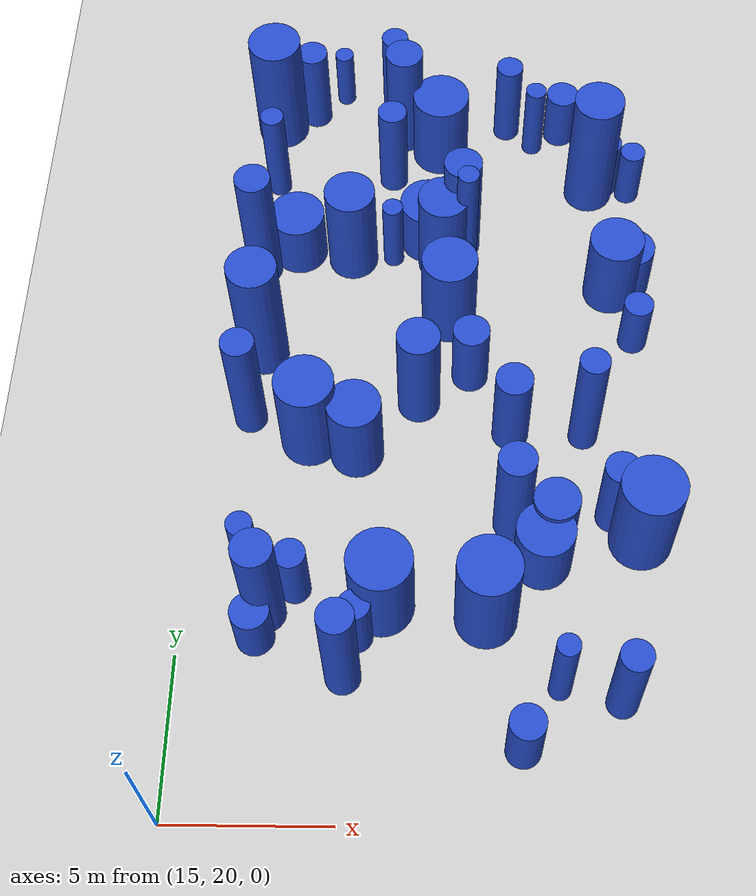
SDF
<sdf version="1.6">
 <world name="default">
  <model name="ground_plane">
   <static>1</static>
   <link name="link">
    <collision name="collision">
     <geometry><plane><normal>0 0 1</normal><size>100 100</size></plane></geometry>
     <surface><friction><ode><mu>100</mu><mu2>50</mu2></ode></friction></surface>
    </collision>
    <visual name="visual">
     <cast_shadows>0</cast_shadows>
     <geometry><plane><normal>0 0 1</normal><size>100 100</size></plane></geometry>
     <material>
      <script><uri>file://media/materials/scripts/gazebo.material</uri><name>Gazebo/Grey</name></script>
     </material>
    </visual>
   </link>
  </model>
  <model name="6">
   <static>0</static>
   <link name="link">
    <inertial>
     <mass>2</mass>
     <inertia><ixx>1.37461</ixx><ixy>0</ixy><ixz>0</ixz><iyy>1.37461</iyy><iyz>0</iyz><izz>0.826308</izz></inertia>
    </inertial>
    <collision name="collision">
     <geometry><cylinder><length>2.40182</length><radius>0.909015</radius></cylinder></geometry>
     <surface><contact><collide_without_contact>1</collide_without_contact></contact></surface>
    </collision>
    <visual name="visual">
     <geometry><cylinder><length>2.40182</length><radius>0.909015</radius></cylinder></geometry>
     <material>
      <script><uri>file://media/materials/scripts/gazebo.material</uri><name>Gazebo/Blue</name></script>
     </material>
    </visual>
    <gravity>0</gravity>
   </link>
   <pose>25.9791 28.1484 1.20091 0 -0 0</pose>
  </model>
  <model name="13">
   <static>0</static>
   <link name="link">
    <inertial>
     <mass>2</mass>
     <inertia><ixx>1.9703</ixx><ixy>0</ixy><ixz>0</ixz><iyy>1.9703</iyy><iyz>0</iyz><izz>0.2914</izz></inertia>
    </inertial>
    <collision name="collision">
     <geometry><cylinder><length>3.30871</length><radius>0.539815</radius></cylinder></geometry>
     <surface><contact><collide_without_contact>1</collide_without_contact></contact></surface>
    </collision>
    <visual name="visual">
     <geometry><cylinder><length>3.30871</length><radius>0.539815</radius></cylinder></geometry>
     <material>
      <script><uri>file://media/materials/scripts/gazebo.material</uri><name>Gazebo/Blue</name></script>
     </material>
    </visual>
    <gravity>0</gravity>
   </link>
   <pose>28.2282 29.745 1.65436 0 -0 0</pose>
  </model>
  <model name="16">
   <static>0</static>
   <link name="link">
    <inertial>
     <mass>2</mass>
     <inertia>
      <ixx>0.892268</ixx>
      <ixy>0</ixy>
      <ixz>0</ixz>
      <iyy>0.892268</iyy>
      <iyz>0</iyz>
      <izz>0.347311</izz>
     </inertia>
    </inertial>
    <collision name="collision">
     <geometry><cylinder><length>2.07646</length><radius>0.589331</radius></cylinder></geometry>
     <surface><contact><collide_without_contact>1</collide_without_contact></contact></surface>
    </collision>
    <visual name="visual">
     <geometry><cylinder><length>2.07646</length><radius>0.589331</radius></cylinder></geometry>
     <material>
      <script><uri>file://media/materials/scripts/gazebo.material</uri><name>Gazebo/Blue</name></script>
     </material>
    </visual>
    <gravity>0</gravity>
   </link>
   <pose>17.3559 25.5947 1.03823 0 -0 0</pose>
  </model>
  <model name="23">
   <static>0</static>
   <link name="link">
    <inertial>
     <mass>2</mass>
     <inertia><ixx>2.13264</ixx><ixy>0</ixy><ixz>0</ixz><iyy>2.13264</iyy><iyz>0</iyz><izz>0.34742</izz></inertia>
    </inertial>
    <collision name="collision">
     <geometry><cylinder><length>3.42835</length><radius>0.589423</radius></cylinder></geometry>
     <surface><contact><collide_without_contact>1</collide_without_contact></contact></surface>
    </collision>
    <visual name="visual">
     <geometry><cylinder><length>3.42835</length><radius>0.589423</radius></cylinder></geometry>
     <material>
      <script><uri>file://media/materials/scripts/gazebo.material</uri><name>Gazebo/Blue</name></script>
     </material>
    </visual>
    <gravity>0</gravity>
   </link>
   <pose>25.0737 32.6969 1.71417 0 -0 0</pose>
  </model>
  <model name="26">
   <static>0</static>
   <link name="link">
    <inertial>
     <mass>2</mass>
     <inertia><ixx>2.66427</ixx><ixy>0</ixy><ixz>0</ixz><iyy>2.66427</iyy><iyz>0</iyz><izz>0.704227</izz></inertia>
    </inertial>
    <collision name="collision">
     <geometry><cylinder><length>3.72464</length><radius>0.839182</radius></cylinder></geometry>
     <surface><contact><collide_without_contact>1</collide_without_contact></contact></surface>
    </collision>
    <visual name="visual">
     <geometry><cylinder><length>3.72464</length><radius>0.839182</radius></cylinder></geometry>
     <material>
      <script><uri>file://media/materials/scripts/gazebo.material</uri><name>Gazebo/Blue</name></script>
     </material>
    </visual>
    <gravity>0</gravity>
   </link>
   <pose>19.7542 39.6332 1.86232 0 -0 0</pose>
  </model>
  <model name="29">
   <static>0</static>
   <link name="link">
    <inertial>
     <mass>2</mass>
     <inertia>
      <ixx>0.975002</ixx>
      <ixy>0</ixy>
      <ixz>0</ixz>
      <iyy>0.975002</iyy>
      <iyz>0</iyz>
      <izz>0.174571</izz>
     </inertia>
    </inertial>
    <collision name="collision">
     <geometry><cylinder><length>2.30788</length><radius>0.417817</radius></cylinder></geometry>
     <surface><contact><collide_without_contact>1</collide_without_contact></contact></surface>
    </collision>
    <visual name="visual">
     <geometry><cylinder><length>2.30788</length><radius>0.417817</radius></cylinder></geometry>
     <material>
      <script><uri>file://media/materials/scripts/gazebo.material</uri><name>Gazebo/Blue</name></script>
     </material>
    </visual>
    <gravity>0</gravity>
   </link>
   <pose>29.3907 42.6499 1.15394 0 -0 0</pose>
  </model>
  <model name="31">
   <static>0</static>
   <link name="link">
    <inertial>
     <mass>2</mass>
     <inertia><ixx>2.57392</ixx><ixy>0</ixy><ixz>0</ixz><iyy>2.57392</iyy><iyz>0</iyz><izz>0.71737</izz></inertia>
    </inertial>
    <collision name="collision">
     <geometry><cylinder><length>3.64574</length><radius>0.846977</radius></cylinder></geometry>
     <surface><contact><collide_without_contact>1</collide_without_contact></contact></surface>
    </collision>
    <visual name="visual">
     <geometry><cylinder><length>3.64574</length><radius>0.846977</radius></cylinder></geometry>
     <material>
      <script><uri>file://media/materials/scripts/gazebo.material</uri><name>Gazebo/Blue</name></script>
     </material>
    </visual>
    <gravity>0</gravity>
   </link>
   <pose>22.8649 39.5204 1.82287 0 -0 0</pose>
  </model>
  <model name="37">
   <static>0</static>
   <link name="link">
    <inertial>
     <mass>2</mass>
     <inertia><ixx>3.04398</ixx><ixy>0</ixy><ixz>0</ixz><iyy>3.04398</iyy><iyz>0</iyz><izz>0.92073</izz></inertia>
    </inertial>
    <collision name="collision">
     <geometry><cylinder><length>3.93722</length><radius>0.959547</radius></cylinder></geometry>
     <surface><contact><collide_without_contact>1</collide_without_contact></contact></surface>
    </collision>
    <visual name="visual">
     <geometry><cylinder><length>3.93722</length><radius>0.959547</radius></cylinder></geometry>
     <material>
      <script><uri>file://media/materials/scripts/gazebo.material</uri><name>Gazebo/Blue</name></script>
     </material>
    </visual>
    <gravity>0</gravity>
   </link>
   <pose>24.2494 26.2747 1.96861 0 -0 0</pose>
  </model>
  <model name="38">
   <static>0</static>
   <link name="link">
    <inertial>
     <mass>2</mass>
     <inertia><ixx>1.02896</ixx><ixy>0</ixy><ixz>0</ixz><iyy>1.02896</iyy><iyz>0</iyz><izz>0.550959</izz></inertia>
    </inertial>
    <collision name="collision">
     <geometry><cylinder><length>2.12623</length><radius>0.742266</radius></cylinder></geometry>
     <surface><contact><collide_without_contact>1</collide_without_contact></contact></surface>
    </collision>
    <visual name="visual">
     <geometry><cylinder><length>2.12623</length><radius>0.742266</radius></cylinder></geometry>
     <material>
      <script><uri>file://media/materials/scripts/gazebo.material</uri><name>Gazebo/Blue</name></script>
     </material>
    </visual>
    <gravity>0</gravity>
   </link>
   <pose>29.1701 38.6962 1.06311 0 -0 0</pose>
  </model>
  <model name="41">
   <static>0</static>
   <link name="link">
    <inertial>
     <mass>2</mass>
     <inertia><ixx>2.43129</ixx><ixy>0</ixy><ixz>0</ixz><iyy>2.43129</iyy><iyz>0</iyz><izz>0.15694</izz></inertia>
    </inertial>
    <collision name="collision">
     <geometry><cylinder><length>3.75725</length><radius>0.396156</radius></cylinder></geometry>
     <surface><contact><collide_without_contact>1</collide_without_contact></contact></surface>
    </collision>
    <visual name="visual">
     <geometry><cylinder><length>3.75725</length><radius>0.396156</radius></cylinder></geometry>
     <material>
      <script><uri>file://media/materials/scripts/gazebo.material</uri><name>Gazebo/Blue</name></script>
     </material>
    </visual>
    <gravity>0</gravity>
   </link>
   <pose>16.9986 42.8262 1.87863 0 -0 0</pose>
  </model>
  <model name="46">
   <static>0</static>
   <link name="link">
    <inertial>
     <mass>2</mass>
     <inertia><ixx>3.66514</ixx><ixy>0</ixy><ixz>0</ixz><iyy>3.66514</iyy><iyz>0</iyz><izz>0.277177</izz></inertia>
    </inertial>
    <collision name="collision">
     <geometry><cylinder><length>4.59992</length><radius>0.526476</radius></cylinder></geometry>
     <surface><contact><collide_without_contact>1</collide_without_contact></contact></surface>
    </collision>
    <visual name="visual">
     <geometry><cylinder><length>4.59992</length><radius>0.526476</radius></cylinder></geometry>
     <material>
      <script><uri>file://media/materials/scripts/gazebo.material</uri><name>Gazebo/Blue</name></script>
     </material>
    </visual>
    <gravity>0</gravity>
   </link>
   <pose>16.6724 33.1642 2.29996 0 -0 0</pose>
  </model>
  <model name="61">
   <static>0</static>
   <link name="link">
    <inertial>
     <mass>2</mass>
     <inertia><ixx>1.98038</ixx><ixy>0</ixy><ixz>0</ixz><iyy>1.98038</iyy><iyz>0</iyz><izz>0.205126</izz></inertia>
    </inertial>
    <collision name="collision">
     <geometry><cylinder><length>3.35662</length><radius>0.452909</radius></cylinder></geometry>
     <surface><contact><collide_without_contact>1</collide_without_contact></contact></surface>
    </collision>
    <visual name="visual">
     <geometry><cylinder><length>3.35662</length><radius>0.452909</radius></cylinder></geometry>
     <material>
      <script><uri>file://media/materials/scripts/gazebo.material</uri><name>Gazebo/Blue</name></script>
     </material>
    </visual>
    <gravity>0</gravity>
   </link>
   <pose>25.1371 45.5648 1.67831 0 -0 0</pose>
  </model>
  <model name="62">
   <static>0</static>
   <link name="link">
    <inertial>
     <mass>2</mass>
     <inertia><ixx>2.47347</ixx><ixy>0</ixy><ixz>0</ixz><iyy>2.47347</iyy><iyz>0</iyz><izz>0.98743</izz></inertia>
    </inertial>
    <collision name="collision">
     <geometry><cylinder><length>3.44652</length><radius>0.993695</radius></cylinder></geometry>
     <surface><contact><collide_without_contact>1</collide_without_contact></contact></surface>
    </collision>
    <visual name="visual">
     <geometry><cylinder><length>3.44652</length><radius>0.993695</radius></cylinder></geometry>
     <material>
      <script><uri>file://media/materials/scripts/gazebo.material</uri><name>Gazebo/Blue</name></script>
     </material>
    </visual>
    <gravity>0</gravity>
   </link>
   <pose>21.1142 26.6464 1.72326 0 -0 0</pose>
  </model>
  <model name="69">
   <static>0</static>
   <link name="link">
    <inertial>
     <mass>2</mass>
     <inertia><ixx>3.87499</ixx><ixy>0</ixy><ixz>0</ixz><iyy>3.87499</iyy><iyz>0</iyz><izz>0.295667</izz></inertia>
    </inertial>
    <collision name="collision">
     <geometry><cylinder><length>4.72895</length><radius>0.543753</radius></cylinder></geometry>
     <surface><contact><collide_without_contact>1</collide_without_contact></contact></surface>
    </collision>
    <visual name="visual">
     <geometry><cylinder><length>4.72895</length><radius>0.543753</radius></cylinder></geometry>
     <material>
      <script><uri>file://media/materials/scripts/gazebo.material</uri><name>Gazebo/Blue</name></script>
     </material>
    </visual>
    <gravity>0</gravity>
   </link>
   <pose>20.0239 24.3758 2.36447 0 -0 0</pose>
  </model>
  <model name="71">
   <static>0</static>
   <link name="link">
    <inertial>
     <mass>2</mass>
     <inertia><ixx>3.59264</ixx><ixy>0</ixy><ixz>0</ixz><iyy>3.59264</iyy><iyz>0</iyz><izz>0.399079</izz></inertia>
    </inertial>
    <collision name="collision">
     <geometry><cylinder><length>4.51205</length><radius>0.631727</radius></cylinder></geometry>
     <surface><contact><collide_without_contact>1</collide_without_contact></contact></surface>
    </collision>
    <visual name="visual">
     <geometry><cylinder><length>4.51205</length><radius>0.631727</radius></cylinder></geometry>
     <material>
      <script><uri>file://media/materials/scripts/gazebo.material</uri><name>Gazebo/Blue</name></script>
     </material>
    </visual>
    <gravity>0</gravity>
   </link>
   <pose>23.478 40.2505 2.25603 0 -0 0</pose>
  </model>
  <model name="84">
   <static>0</static>
   <link name="link">
    <inertial>
     <mass>2</mass>
     <inertia><ixx>2.71071</ixx><ixy>0</ixy><ixz>0</ixz><iyy>2.71071</iyy><iyz>0</iyz><izz>0.884749</izz></inertia>
    </inertial>
    <collision name="collision">
     <geometry><cylinder><length>3.68917</length><radius>0.940611</radius></cylinder></geometry>
     <surface><contact><collide_without_contact>1</collide_without_contact></contact></surface>
    </collision>
    <visual name="visual">
     <geometry><cylinder><length>3.68917</length><radius>0.940611</radius></cylinder></geometry>
     <material>
      <script><uri>file://media/materials/scripts/gazebo.material</uri><name>Gazebo/Blue</name></script>
     </material>
    </visual>
    <gravity>0</gravity>
   </link>
   <pose>18.6467 32.3799 1.84459 0 -0 0</pose>
  </model>
  <model name="89">
   <static>0</static>
   <link name="link">
    <inertial>
     <mass>2</mass>
     <inertia><ixx>4.46549</ixx><ixy>0</ixy><ixz>0</ixz><iyy>4.46549</iyy><iyz>0</iyz><izz>0.649868</izz></inertia>
    </inertial>
    <collision name="collision">
     <geometry><cylinder><length>4.98431</length><radius>0.806144</radius></cylinder></geometry>
     <surface><contact><collide_without_contact>1</collide_without_contact></contact></surface>
    </collision>
    <visual name="visual">
     <geometry><cylinder><length>4.98431</length><radius>0.806144</radius></cylinder></geometry>
     <material>
      <script><uri>file://media/materials/scripts/gazebo.material</uri><name>Gazebo/Blue</name></script>
     </material>
    </visual>
    <gravity>0</gravity>
   </link>
   <pose>16.9416 35.66 2.49215 0 -0 0</pose>
  </model>
  <model name="90">
   <static>0</static>
   <link name="link">
    <inertial>
     <mass>2</mass>
     <inertia><ixx>1.25348</ixx><ixy>0</ixy><ixz>0</ixz><iyy>1.25348</iyy><iyz>0</iyz><izz>0.890795</izz></inertia>
    </inertial>
    <collision name="collision">
     <geometry><cylinder><length>2.20193</length><radius>0.943819</radius></cylinder></geometry>
     <surface><contact><collide_without_contact>1</collide_without_contact></contact></surface>
    </collision>
    <visual name="visual">
     <geometry><cylinder><length>2.20193</length><radius>0.943819</radius></cylinder></geometry>
     <material>
      <script><uri>file://media/materials/scripts/gazebo.material</uri><name>Gazebo/Blue</name></script>
     </material>
    </visual>
    <gravity>0</gravity>
   </link>
   <pose>22.3331 40.4778 1.10096 0 -0 0</pose>
  </model>
  <model name="96">
   <static>0</static>
   <link name="link">
    <inertial>
     <mass>2</mass>
     <inertia><ixx>2.87652</ixx><ixy>0</ixy><ixz>0</ixz><iyy>2.87652</iyy><iyz>0</iyz><izz>0.99004</izz></inertia>
    </inertial>
    <collision name="collision">
     <geometry><cylinder><length>3.78008</length><radius>0.995008</radius></cylinder></geometry>
     <surface><contact><collide_without_contact>1</collide_without_contact></contact></surface>
    </collision>
    <visual name="visual">
     <geometry><cylinder><length>3.78008</length><radius>0.995008</radius></cylinder></geometry>
     <material>
      <script><uri>file://media/materials/scripts/gazebo.material</uri><name>Gazebo/Blue</name></script>
     </material>
    </visual>
    <gravity>0</gravity>
   </link>
   <pose>29.0539 28.9243 1.89004 0 -0 0</pose>
  </model>
  <model name="107">
   <static>0</static>
   <link name="link">
    <inertial>
     <mass>2</mass>
     <inertia><ixx>1.96436</ixx><ixy>0</ixy><ixz>0</ixz><iyy>1.96436</iyy><iyz>0</iyz><izz>0.272821</izz></inertia>
    </inertial>
    <collision name="collision">
     <geometry><cylinder><length>3.31175</length><radius>0.522322</radius></cylinder></geometry>
     <surface><contact><collide_without_contact>1</collide_without_contact></contact></surface>
    </collision>
    <visual name="visual">
     <geometry><cylinder><length>3.31175</length><radius>0.522322</radius></cylinder></geometry>
     <material>
      <script><uri>file://media/materials/scripts/gazebo.material</uri><name>Gazebo/Blue</name></script>
     </material>
    </visual>
    <gravity>0</gravity>
   </link>
   <pose>18.1658 46.183 1.65587 0 -0 0</pose>
  </model>
  <model name="110">
   <static>0</static>
   <link name="link">
    <inertial>
     <mass>2</mass>
     <inertia>
      <ixx>0.946997</ixx>
      <ixy>0</ixy>
      <ixz>0</ixz>
      <iyy>0.946997</iyy>
      <iyz>0</iyz>
      <izz>0.230982</izz>
     </inertia>
    </inertial>
    <collision name="collision">
     <geometry><cylinder><length>2.23361</length><radius>0.480606</radius></cylinder></geometry>
     <surface><contact><collide_without_contact>1</collide_without_contact></contact></surface>
    </collision>
    <visual name="visual">
     <geometry><cylinder><length>2.23361</length><radius>0.480606</radius></cylinder></geometry>
     <material>
      <script><uri>file://media/materials/scripts/gazebo.material</uri><name>Gazebo/Blue</name></script>
     </material>
    </visual>
    <gravity>0</gravity>
   </link>
   <pose>29.2281 36.3305 1.11681 0 -0 0</pose>
  </model>
  <model name="114">
   <static>0</static>
   <link name="link">
    <inertial>
     <mass>2</mass>
     <inertia><ixx>3.88257</ixx><ixy>0</ixy><ixz>0</ixz><iyy>3.88257</iyy><iyz>0</iyz><izz>0.378975</izz></inertia>
    </inertial>
    <collision name="collision">
     <geometry><cylinder><length>4.70728</length><radius>0.61561</radius></cylinder></geometry>
     <surface><contact><collide_without_contact>1</collide_without_contact></contact></surface>
    </collision>
    <visual name="visual">
     <geometry><cylinder><length>4.70728</length><radius>0.61561</radius></cylinder></geometry>
     <material>
      <script><uri>file://media/materials/scripts/gazebo.material</uri><name>Gazebo/Blue</name></script>
     </material>
    </visual>
    <gravity>0</gravity>
   </link>
   <pose>17.6251 26.3576 2.35364 0 -0 0</pose>
  </model>
  <model name="118">
   <static>0</static>
   <link name="link">
    <inertial>
     <mass>2</mass>
     <inertia><ixx>1.18813</ixx><ixy>0</ixy><ixz>0</ixz><iyy>1.18813</iyy><iyz>0</iyz><izz>0.232355</izz></inertia>
    </inertial>
    <collision name="collision">
     <geometry><cylinder><length>2.53608</length><radius>0.482032</radius></cylinder></geometry>
     <surface><contact><collide_without_contact>1</collide_without_contact></contact></surface>
    </collision>
    <visual name="visual">
     <geometry><cylinder><length>2.53608</length><radius>0.482032</radius></cylinder></geometry>
     <material>
      <script><uri>file://media/materials/scripts/gazebo.material</uri><name>Gazebo/Blue</name></script>
     </material>
    </visual>
    <gravity>0</gravity>
   </link>
   <pose>20.3931 25.6293 1.26804 0 -0 0</pose>
  </model>
  <model name="121">
   <static>0</static>
   <link name="link">
    <inertial>
     <mass>2</mass>
     <inertia><ixx>2.19147</ixx><ixy>0</ixy><ixz>0</ixz><iyy>2.19147</iyy><iyz>0</iyz><izz>0.213321</izz></inertia>
    </inertial>
    <collision name="collision">
     <geometry><cylinder><length>3.53679</length><radius>0.461867</radius></cylinder></geometry>
     <surface><contact><collide_without_contact>1</collide_without_contact></contact></surface>
    </collision>
    <visual name="visual">
     <geometry><cylinder><length>3.53679</length><radius>0.461867</radius></cylinder></geometry>
     <material>
      <script><uri>file://media/materials/scripts/gazebo.material</uri><name>Gazebo/Blue</name></script>
     </material>
    </visual>
    <gravity>0</gravity>
   </link>
   <pose>21.0757 46.7296 1.76839 0 -0 0</pose>
  </model>
  <model name="123">
   <static>0</static>
   <link name="link">
    <inertial>
     <mass>2</mass>
     <inertia><ixx>4.2969</ixx><ixy>0</ixy><ixz>0</ixz><iyy>4.2969</iyy><iyz>0</iyz><izz>0.341178</izz></inertia>
    </inertial>
    <collision name="collision">
     <geometry><cylinder><length>4.97572</length><radius>0.584104</radius></cylinder></geometry>
     <surface><contact><collide_without_contact>1</collide_without_contact></contact></surface>
    </collision>
    <visual name="visual">
     <geometry><cylinder><length>4.97572</length><radius>0.584104</radius></cylinder></geometry>
     <material>
      <script><uri>file://media/materials/scripts/gazebo.material</uri><name>Gazebo/Blue</name></script>
     </material>
    </visual>
    <gravity>0</gravity>
   </link>
   <pose>16.7188 39.1376 2.48786 0 -0 0</pose>
  </model>
  <model name="130">
   <static>0</static>
   <link name="link">
    <inertial>
     <mass>2</mass>
     <inertia><ixx>2.08421</ixx><ixy>0</ixy><ixz>0</ixz><iyy>2.08421</iyy><iyz>0</iyz><izz>0.73609</izz></inertia>
    </inertial>
    <collision name="collision">
     <geometry><cylinder><length>3.20889</length><radius>0.857957</radius></cylinder></geometry>
     <surface><contact><collide_without_contact>1</collide_without_contact></contact></surface>
    </collision>
    <visual name="visual">
     <geometry><cylinder><length>3.20889</length><radius>0.857957</radius></cylinder></geometry>
     <material>
      <script><uri>file://media/materials/scripts/gazebo.material</uri><name>Gazebo/Blue</name></script>
     </material>
    </visual>
    <gravity>0</gravity>
   </link>
   <pose>20.1641 31.8975 1.60445 0 -0 0</pose>
  </model>
  <model name="131">
   <static>0</static>
   <link name="link">
    <inertial>
     <mass>2</mass>
     <inertia><ixx>1.453</ixx><ixy>0</ixy><ixz>0</ixz><iyy>1.453</iyy><iyz>0</iyz><izz>0.351605</izz></inertia>
    </inertial>
    <collision name="collision">
     <geometry><cylinder><length>2.76824</length><radius>0.592963</radius></cylinder></geometry>
     <surface><contact><collide_without_contact>1</collide_without_contact></contact></surface>
    </collision>
    <visual name="visual">
     <geometry><cylinder><length>2.76824</length><radius>0.592963</radius></cylinder></geometry>
     <material>
      <script><uri>file://media/materials/scripts/gazebo.material</uri><name>Gazebo/Blue</name></script>
     </material>
    </visual>
    <gravity>0</gravity>
   </link>
   <pose>23.7772 34.883 1.38412 0 -0 0</pose>
  </model>
  <model name="133">
   <static>0</static>
   <link name="link">
    <inertial>
     <mass>2</mass>
     <inertia><ixx>3.39922</ixx><ixy>0</ixy><ixz>0</ixz><iyy>3.39922</iyy><iyz>0</iyz><izz>0.407342</izz></inertia>
    </inertial>
    <collision name="collision">
     <geometry><cylinder><length>4.37873</length><radius>0.638233</radius></cylinder></geometry>
     <surface><contact><collide_without_contact>1</collide_without_contact></contact></surface>
    </collision>
    <visual name="visual">
     <geometry><cylinder><length>4.37873</length><radius>0.638233</radius></cylinder></geometry>
     <material>
      <script><uri>file://media/materials/scripts/gazebo.material</uri><name>Gazebo/Blue</name></script>
     </material>
    </visual>
    <gravity>0</gravity>
   </link>
   <pose>21.4511 45.1741 2.18937 0 -0 0</pose>
  </model>
  <model name="139">
   <static>0</static>
   <link name="link">
    <inertial>
     <mass>2</mass>
     <inertia><ixx>1.26043</ixx><ixy>0</ixy><ixz>0</ixz><iyy>1.26043</iyy><iyz>0</iyz><izz>0.289407</izz></inertia>
    </inertial>
    <collision name="collision">
     <geometry><cylinder><length>2.58734</length><radius>0.537965</radius></cylinder></geometry>
     <surface><contact><collide_without_contact>1</collide_without_contact></contact></surface>
    </collision>
    <visual name="visual">
     <geometry><cylinder><length>2.58734</length><radius>0.537965</radius></cylinder></geometry>
     <material>
      <script><uri>file://media/materials/scripts/gazebo.material</uri><name>Gazebo/Blue</name></script>
     </material>
    </visual>
    <gravity>0</gravity>
   </link>
   <pose>25.2967 22.244 1.29367 0 -0 0</pose>
  </model>
  <model name="148">
   <static>0</static>
   <link name="link">
    <inertial>
     <mass>2</mass>
     <inertia><ixx>3.77434</ixx><ixy>0</ixy><ixz>0</ixz><iyy>3.77434</iyy><iyz>0</iyz><izz>0.802966</izz></inertia>
    </inertial>
    <collision name="collision">
     <geometry><cylinder><length>4.49857</length><radius>0.896084</radius></cylinder></geometry>
     <surface><contact><collide_without_contact>1</collide_without_contact></contact></surface>
    </collision>
    <visual name="visual">
     <geometry><cylinder><length>4.49857</length><radius>0.896084</radius></cylinder></geometry>
     <material>
      <script><uri>file://media/materials/scripts/gazebo.material</uri><name>Gazebo/Blue</name></script>
     </material>
    </visual>
    <gravity>0</gravity>
   </link>
   <pose>16.9609 45.5384 2.24929 0 -0 0</pose>
  </model>
  <model name="151">
   <static>0</static>
   <link name="link">
    <inertial>
     <mass>2</mass>
     <inertia><ixx>1.90216</ixx><ixy>0</ixy><ixz>0</ixz><iyy>1.90216</iyy><iyz>0</iyz><izz>0.795254</izz></inertia>
    </inertial>
    <collision name="collision">
     <geometry><cylinder><length>3.00453</length><radius>0.89177</radius></cylinder></geometry>
     <surface><contact><collide_without_contact>1</collide_without_contact></contact></surface>
    </collision>
    <visual name="visual">
     <geometry><cylinder><length>3.00453</length><radius>0.89177</radius></cylinder></geometry>
     <material>
      <script><uri>file://media/materials/scripts/gazebo.material</uri><name>Gazebo/Blue</name></script>
     </material>
    </visual>
    <gravity>0</gravity>
   </link>
   <pose>28.5536 38.351 1.50226 0 -0 0</pose>
  </model>
  <model name="152">
   <static>0</static>
   <link name="link">
    <inertial>
     <mass>2</mass>
     <inertia><ixx>3.0223</ixx><ixy>0</ixy><ixz>0</ixz><iyy>3.0223</iyy><iyz>0</iyz><izz>0.469931</izz></inertia>
    </inertial>
    <collision name="collision">
     <geometry><cylinder><length>4.0895</length><radius>0.685515</radius></cylinder></geometry>
     <surface><contact><collide_without_contact>1</collide_without_contact></contact></surface>
    </collision>
    <visual name="visual">
     <geometry><cylinder><length>4.0895</length><radius>0.685515</radius></cylinder></geometry>
     <material>
      <script><uri>file://media/materials/scripts/gazebo.material</uri><name>Gazebo/Blue</name></script>
     </material>
    </visual>
    <gravity>0</gravity>
   </link>
   <pose>22.115 33.7828 2.04475 0 -0 0</pose>
  </model>
  <model name="154">
   <static>0</static>
   <link name="link">
    <inertial>
     <mass>2</mass>
     <inertia><ixx>1.08129</ixx><ixy>0</ixy><ixz>0</ixz><iyy>1.08129</iyy><iyz>0</iyz><izz>0.230415</izz></inertia>
    </inertial>
    <collision name="collision">
     <geometry><cylinder><length>2.40759</length><radius>0.480015</radius></cylinder></geometry>
     <surface><contact><collide_without_contact>1</collide_without_contact></contact></surface>
    </collision>
    <visual name="visual">
     <geometry><cylinder><length>2.40759</length><radius>0.480015</radius></cylinder></geometry>
     <material>
      <script><uri>file://media/materials/scripts/gazebo.material</uri><name>Gazebo/Blue</name></script>
     </material>
    </visual>
    <gravity>0</gravity>
   </link>
   <pose>28.5346 42.9609 1.2038 0 -0 0</pose>
  </model>
  <model name="166">
   <static>0</static>
   <link name="link">
    <inertial>
     <mass>2</mass>
     <inertia><ixx>1.5574</ixx><ixy>0</ixy><ixz>0</ixz><iyy>1.5574</iyy><iyz>0</iyz><izz>0.124894</izz></inertia>
    </inertial>
    <collision name="collision">
     <geometry><cylinder><length>2.99495</length><radius>0.353403</radius></cylinder></geometry>
     <surface><contact><collide_without_contact>1</collide_without_contact></contact></surface>
    </collision>
    <visual name="visual">
     <geometry><cylinder><length>2.99495</length><radius>0.353403</radius></cylinder></geometry>
     <material>
      <script><uri>file://media/materials/scripts/gazebo.material</uri><name>Gazebo/Blue</name></script>
     </material>
    </visual>
    <gravity>0</gravity>
   </link>
   <pose>26.0606 44.8052 1.49748 0 -0 0</pose>
  </model>
  <model name="169">
   <static>0</static>
   <link name="link">
    <inertial>
     <mass>2</mass>
     <inertia><ixx>3.98314</ixx><ixy>0</ixy><ixz>0</ixz><iyy>3.98314</iyy><iyz>0</iyz><izz>0.125619</izz></inertia>
    </inertial>
    <collision name="collision">
     <geometry><cylinder><length>4.84995</length><radius>0.354428</radius></cylinder></geometry>
     <surface><contact><collide_without_contact>1</collide_without_contact></contact></surface>
    </collision>
    <visual name="visual">
     <geometry><cylinder><length>4.84995</length><radius>0.354428</radius></cylinder></geometry>
     <material>
      <script><uri>file://media/materials/scripts/gazebo.material</uri><name>Gazebo/Blue</name></script>
     </material>
    </visual>
    <gravity>0</gravity>
   </link>
   <pose>23.6433 39.4979 2.42497 0 -0 0</pose>
  </model>
  <model name="174">
   <static>0</static>
   <link name="link">
    <inertial>
     <mass>2</mass>
     <inertia><ixx>2.58714</ixx><ixy>0</ixy><ixz>0</ixz><iyy>2.58714</iyy><iyz>0</iyz><izz>0.23591</izz></inertia>
    </inertial>
    <collision name="collision">
     <geometry><cylinder><length>3.84904</length><radius>0.485706</radius></cylinder></geometry>
     <surface><contact><collide_without_contact>1</collide_without_contact></contact></surface>
    </collision>
    <visual name="visual">
     <geometry><cylinder><length>3.84904</length><radius>0.485706</radius></cylinder></geometry>
     <material>
      <script><uri>file://media/materials/scripts/gazebo.material</uri><name>Gazebo/Blue</name></script>
     </material>
    </visual>
    <gravity>0</gravity>
   </link>
   <pose>28.2157 23.7027 1.92452 0 -0 0</pose>
  </model>
  <model name="180">
   <static>0</static>
   <link name="link">
    <inertial>
     <mass>2</mass>
     <inertia><ixx>4.25872</ixx><ixy>0</ixy><ixz>0</ixz><iyy>4.25872</iyy><iyz>0</iyz><izz>0.693397</izz></inertia>
    </inertial>
    <collision name="collision">
     <geometry><cylinder><length>4.8448</length><radius>0.832705</radius></cylinder></geometry>
     <surface><contact><collide_without_contact>1</collide_without_contact></contact></surface>
    </collision>
    <visual name="visual">
     <geometry><cylinder><length>4.8448</length><radius>0.832705</radius></cylinder></geometry>
     <material>
      <script><uri>file://media/materials/scripts/gazebo.material</uri><name>Gazebo/Blue</name></script>
     </material>
    </visual>
    <gravity>0</gravity>
   </link>
   <pose>28.0065 42.6788 2.4224 0 -0 0</pose>
  </model>
  <model name="185">
   <static>0</static>
   <link name="link">
    <inertial>
     <mass>2</mass>
     <inertia>
      <ixx>0.926216</ixx>
      <ixy>0</ixy>
      <ixz>0</ixz>
      <iyy>0.926216</iyy>
      <iyz>0</iyz>
      <izz>0.103612</izz>
     </inertia>
    </inertial>
    <collision name="collision">
     <geometry><cylinder><length>2.29052</length><radius>0.321888</radius></cylinder></geometry>
     <surface><contact><collide_without_contact>1</collide_without_contact></contact></surface>
    </collision>
    <visual name="visual">
     <geometry><cylinder><length>2.29052</length><radius>0.321888</radius></cylinder></geometry>
     <material>
      <script><uri>file://media/materials/scripts/gazebo.material</uri><name>Gazebo/Blue</name></script>
     </material>
    </visual>
    <gravity>0</gravity>
   </link>
   <pose>19.2132 47.1003 1.14526 0 -0 0</pose>
  </model>
  <model name="186">
   <static>0</static>
   <link name="link">
    <inertial>
     <mass>2</mass>
     <inertia><ixx>1.45752</ixx><ixy>0</ixy><ixz>0</ixz><iyy>1.45752</iyy><iyz>0</iyz><izz>0.163169</izz></inertia>
    </inertial>
    <collision name="collision">
     <geometry><cylinder><length>2.87326</length><radius>0.403942</radius></cylinder></geometry>
     <surface><contact><collide_without_contact>1</collide_without_contact></contact></surface>
    </collision>
    <visual name="visual">
     <geometry><cylinder><length>2.87326</length><radius>0.403942</radius></cylinder></geometry>
     <material>
      <script><uri>file://media/materials/scripts/gazebo.material</uri><name>Gazebo/Blue</name></script>
     </material>
    </visual>
    <gravity>0</gravity>
   </link>
   <pose>16.9574 27.9873 1.43663 0 -0 0</pose>
  </model>
  <model name="190">
   <static>0</static>
   <link name="link">
    <inertial>
     <mass>2</mass>
     <inertia><ixx>2.32648</ixx><ixy>0</ixy><ixz>0</ixz><iyy>2.32648</iyy><iyz>0</iyz><izz>0.241289</izz></inertia>
    </inertial>
    <collision name="collision">
     <geometry><cylinder><length>3.63799</length><radius>0.491212</radius></cylinder></geometry>
     <surface><contact><collide_without_contact>1</collide_without_contact></contact></surface>
    </collision>
    <visual name="visual">
     <geometry><cylinder><length>3.63799</length><radius>0.491212</radius></cylinder></geometry>
     <material>
      <script><uri>file://media/materials/scripts/gazebo.material</uri><name>Gazebo/Blue</name></script>
     </material>
    </visual>
    <gravity>0</gravity>
   </link>
   <pose>21.0742 43.1879 1.819 0 -0 0</pose>
  </model>
  <model name="192">
   <static>0</static>
   <link name="link">
    <inertial>
     <mass>2</mass>
     <inertia><ixx>2.03155</ixx><ixy>0</ixy><ixz>0</ixz><iyy>2.03155</iyy><iyz>0</iyz><izz>0.938977</izz></inertia>
    </inertial>
    <collision name="collision">
     <geometry><cylinder><length>3.06143</length><radius>0.969008</radius></cylinder></geometry>
     <surface><contact><collide_without_contact>1</collide_without_contact></contact></surface>
    </collision>
    <visual name="visual">
     <geometry><cylinder><length>3.06143</length><radius>0.969008</radius></cylinder></geometry>
     <material>
      <script><uri>file://media/materials/scripts/gazebo.material</uri><name>Gazebo/Blue</name></script>
     </material>
    </visual>
    <gravity>0</gravity>
   </link>
   <pose>22.7298 44.454 1.53071 0 -0 0</pose>
  </model>
  <model name="193">
   <static>0</static>
   <link name="link">
    <inertial>
     <mass>2</mass>
     <inertia><ixx>1.21033</ixx><ixy>0</ixy><ixz>0</ixz><iyy>1.21033</iyy><iyz>0</iyz><izz>0.860285</izz></inertia>
    </inertial>
    <collision name="collision">
     <geometry><cylinder><length>2.16359</length><radius>0.927516</radius></cylinder></geometry>
     <surface><contact><collide_without_contact>1</collide_without_contact></contact></surface>
    </collision>
    <visual name="visual">
     <geometry><cylinder><length>2.16359</length><radius>0.927516</radius></cylinder></geometry>
     <material>
      <script><uri>file://media/materials/scripts/gazebo.material</uri><name>Gazebo/Blue</name></script>
     </material>
    </visual>
    <gravity>0</gravity>
   </link>
   <pose>17.8982 39.943 1.08179 0 -0 0</pose>
  </model>
  <model name="203">
   <static>0</static>
   <link name="link">
    <inertial>
     <mass>2</mass>
     <inertia><ixx>2.43752</ixx><ixy>0</ixy><ixz>0</ixz><iyy>2.43752</iyy><iyz>0</iyz><izz>0.827022</izz></inertia>
    </inertial>
    <collision name="collision">
     <geometry><cylinder><length>3.48483</length><radius>0.909407</radius></cylinder></geometry>
     <surface><contact><collide_without_contact>1</collide_without_contact></contact></surface>
    </collision>
    <visual name="visual">
     <geometry><cylinder><length>3.48483</length><radius>0.909407</radius></cylinder></geometry>
     <material>
      <script><uri>file://media/materials/scripts/gazebo.material</uri><name>Gazebo/Blue</name></script>
     </material>
    </visual>
    <gravity>0</gravity>
   </link>
   <pose>23.0683 37.1293 1.74242 0 -0 0</pose>
  </model>
  <model name="208">
   <static>0</static>
   <link name="link">
    <inertial>
     <mass>2</mass>
     <inertia><ixx>2.18125</ixx><ixy>0</ixy><ixz>0</ixz><iyy>2.18125</iyy><iyz>0</iyz><izz>0.120256</izz></inertia>
    </inertial>
    <collision name="collision">
     <geometry><cylinder><length>3.56746</length><radius>0.34678</radius></cylinder></geometry>
     <surface><contact><collide_without_contact>1</collide_without_contact></contact></surface>
    </collision>
    <visual name="visual">
     <geometry><cylinder><length>3.56746</length><radius>0.34678</radius></cylinder></geometry>
     <material>
      <script><uri>file://media/materials/scripts/gazebo.material</uri><name>Gazebo/Blue</name></script>
     </material>
    </visual>
    <gravity>0</gravity>
   </link>
   <pose>26.4023 24.0932 1.78373 0 -0 0</pose>
  </model>
  <model name="210">
   <static>0</static>
   <link name="link">
    <inertial>
     <mass>2</mass>
     <inertia>
      <ixx>0.923363</ixx>
      <ixy>0</ixy>
      <ixz>0</ixz>
      <iyy>0.923363</iyy>
      <iyz>0</iyz>
      <izz>0.306376</izz>
     </inertia>
    </inertial>
    <collision name="collision">
     <geometry><cylinder><length>2.14966</length><radius>0.553512</radius></cylinder></geometry>
     <surface><contact><collide_without_contact>1</collide_without_contact></contact></surface>
    </collision>
    <visual name="visual">
     <geometry><cylinder><length>2.14966</length><radius>0.553512</radius></cylinder></geometry>
     <material>
      <script><uri>file://media/materials/scripts/gazebo.material</uri><name>Gazebo/Blue</name></script>
     </material>
    </visual>
    <gravity>0</gravity>
   </link>
   <pose>27.0623 45.4208 1.07483 0 -0 0</pose>
  </model>
  <model name="231">
   <static>0</static>
   <link name="link">
    <inertial>
     <mass>2</mass>
     <inertia><ixx>1.42993</ixx><ixy>0</ixy><ixz>0</ixz><iyy>1.42993</iyy><iyz>0</iyz><izz>0.118213</izz></inertia>
    </inertial>
    <collision name="collision">
     <geometry><cylinder><length>2.86792</length><radius>0.343821</radius></cylinder></geometry>
     <surface><contact><collide_without_contact>1</collide_without_contact></contact></surface>
    </collision>
    <visual name="visual">
     <geometry><cylinder><length>2.86792</length><radius>0.343821</radius></cylinder></geometry>
     <material>
      <script><uri>file://media/materials/scripts/gazebo.material</uri><name>Gazebo/Blue</name></script>
     </material>
    </visual>
    <gravity>0</gravity>
   </link>
   <pose>21.1521 39.6977 1.43396 0 -0 0</pose>
  </model>
  <model name="232">
   <static>0</static>
   <link name="link">
    <inertial>
     <mass>2</mass>
     <inertia><ixx>1.25471</ixx><ixy>0</ixy><ixz>0</ixz><iyy>1.25471</iyy><iyz>0</iyz><izz>0.231421</izz></inertia>
    </inertial>
    <collision name="collision">
     <geometry><cylinder><length>2.61419</length><radius>0.481063</radius></cylinder></geometry>
     <surface><contact><collide_without_contact>1</collide_without_contact></contact></surface>
    </collision>
    <visual name="visual">
     <geometry><cylinder><length>2.61419</length><radius>0.481063</radius></cylinder></geometry>
     <material>
      <script><uri>file://media/materials/scripts/gazebo.material</uri><name>Gazebo/Blue</name></script>
     </material>
    </visual>
    <gravity>0</gravity>
   </link>
   <pose>18.4605 27.1727 1.3071 0 -0 0</pose>
  </model>
  <model name="235">
   <static>0</static>
   <link name="link">
    <inertial>
     <mass>2</mass>
     <inertia><ixx>3.64645</ixx><ixy>0</ixy><ixz>0</ixz><iyy>3.64645</iyy><iyz>0</iyz><izz>0.222826</izz></inertia>
    </inertial>
    <collision name="collision">
     <geometry><cylinder><length>4.60545</length><radius>0.472045</radius></cylinder></geometry>
     <surface><contact><collide_without_contact>1</collide_without_contact></contact></surface>
    </collision>
    <visual name="visual">
     <geometry><cylinder><length>4.60545</length><radius>0.472045</radius></cylinder></geometry>
     <material>
      <script><uri>file://media/materials/scripts/gazebo.material</uri><name>Gazebo/Blue</name></script>
     </material>
    </visual>
    <gravity>0</gravity>
   </link>
   <pose>27.4192 32.6272 2.30273 0 -0 0</pose>
  </model>
  <model name="236">
   <static>0</static>
   <link name="link">
    <inertial>
     <mass>2</mass>
     <inertia><ixx>1.38269</ixx><ixy>0</ixy><ixz>0</ixz><iyy>1.38269</iyy><iyz>0</iyz><izz>0.521425</izz></inertia>
    </inertial>
    <collision name="collision">
     <geometry><cylinder><length>2.59459</length><radius>0.722097</radius></cylinder></geometry>
     <surface><contact><collide_without_contact>1</collide_without_contact></contact></surface>
    </collision>
    <visual name="visual">
     <geometry><cylinder><length>2.59459</length><radius>0.722097</radius></cylinder></geometry>
     <material>
      <script><uri>file://media/materials/scripts/gazebo.material</uri><name>Gazebo/Blue</name></script>
     </material>
    </visual>
    <gravity>0</gravity>
   </link>
   <pose>26.321 29.0593 1.29729 0 -0 0</pose>
  </model>
  <model name="247">
   <static>0</static>
   <link name="link">
    <inertial>
     <mass>2</mass>
     <inertia><ixx>3.22151</ixx><ixy>0</ixy><ixz>0</ixz><iyy>3.22151</iyy><iyz>0</iyz><izz>0.345206</izz></inertia>
    </inertial>
    <collision name="collision">
     <geometry><cylinder><length>4.27708</length><radius>0.587543</radius></cylinder></geometry>
     <surface><contact><collide_without_contact>1</collide_without_contact></contact></surface>
    </collision>
    <visual name="visual">
     <geometry><cylinder><length>4.27708</length><radius>0.587543</radius></cylinder></geometry>
     <material>
      <script><uri>file://media/materials/scripts/gazebo.material</uri><name>Gazebo/Blue</name></script>
     </material>
    </visual>
    <gravity>0</gravity>
   </link>
   <pose>25.0728 29.4698 2.13854 0 -0 0</pose>
  </model>
 </world>
</sdf>
